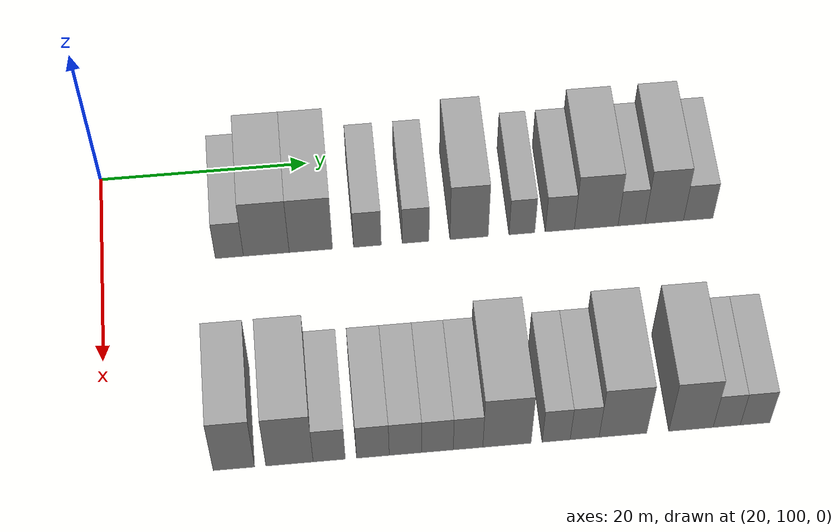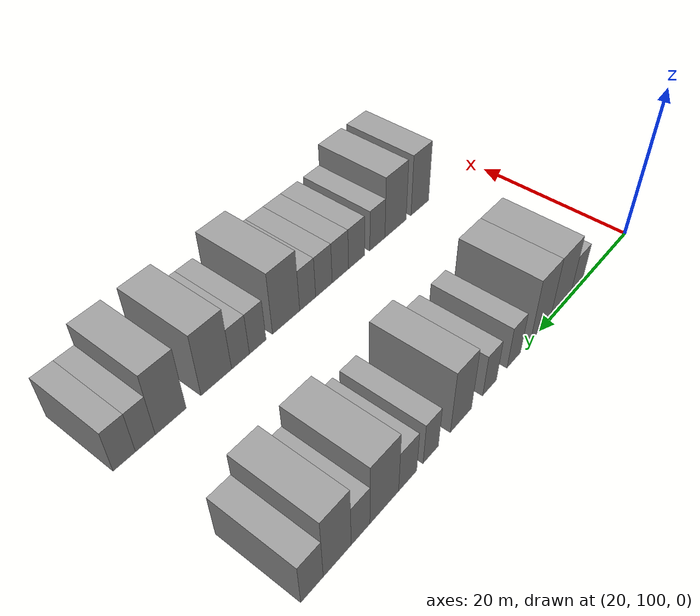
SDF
<sdf version="1.6">
 <world name="default">
  <model name="building_79">
   <static>1</static>
   <pose>25.0000 112.0614 0 0.000000 0.000000 0.000000</pose>
   <link name="link">
    <pose>0 0 3.00 0 0 0</pose>
    <collision name="collision"><geometry><box><size>10.0000 2.6617 6.0000</size></box></geometry></collision>
    <visual name="visual">
     <cast_shadows>0</cast_shadows>
     <geometry><box><size>10.0000 2.6617 6.0000</size></box></geometry>
     <material>
      <script>
       <uri>model://grey_wall/materials/scripts</uri>
       <uri>model://grey_wall/materials/textures</uri>
       <name>vrc/grey_wall</name>
      </script>
     </material>
    </visual>
   </link>
  </model>
  <model name="building_80">
   <static>1</static>
   <pose>25.0000 115.5644 0 0.000000 0.000000 0.000000</pose>
   <link name="link">
    <pose>0 0 4.50 0 0 0</pose>
    <collision name="collision"><geometry><box><size>10.0000 4.3442 9.0000</size></box></geometry></collision>
    <visual name="visual">
     <cast_shadows>0</cast_shadows>
     <geometry><box><size>10.0000 4.3442 9.0000</size></box></geometry>
     <material>
      <script>
       <uri>model://grey_wall/materials/scripts</uri>
       <uri>model://grey_wall/materials/textures</uri>
       <name>vrc/grey_wall</name>
      </script>
     </material>
    </visual>
   </link>
  </model>
  <model name="building_81">
   <static>1</static>
   <pose>25.0000 119.8007 0 0.000000 0.000000 0.000000</pose>
   <link name="link">
    <pose>0 0 4.50 0 0 0</pose>
    <collision name="collision"><geometry><box><size>10.0000 4.1285 9.0000</size></box></geometry></collision>
    <visual name="visual">
     <cast_shadows>0</cast_shadows>
     <geometry><box><size>10.0000 4.1285 9.0000</size></box></geometry>
     <material>
      <script>
       <uri>model://grey_wall/materials/scripts</uri>
       <uri>model://grey_wall/materials/textures</uri>
       <name>vrc/grey_wall</name>
      </script>
     </material>
    </visual>
   </link>
  </model>
  <model name="building_82">
   <static>1</static>
   <pose>25.0000 125.1866 0 0.000000 0.000000 0.000000</pose>
   <link name="link">
    <pose>0 0 3.00 0 0 0</pose>
    <collision name="collision"><geometry><box><size>10.0000 2.6433 6.0000</size></box></geometry></collision>
    <visual name="visual">
     <cast_shadows>0</cast_shadows>
     <geometry><box><size>10.0000 2.6433 6.0000</size></box></geometry>
     <material>
      <script>
       <uri>model://grey_wall/materials/scripts</uri>
       <uri>model://grey_wall/materials/textures</uri>
       <name>vrc/grey_wall</name>
      </script>
     </material>
    </visual>
   </link>
  </model>
  <model name="building_83">
   <static>1</static>
   <pose>25.0000 129.7910 0 0.000000 0.000000 0.000000</pose>
   <link name="link">
    <pose>0 0 3.00 0 0 0</pose>
    <collision name="collision"><geometry><box><size>10.0000 2.5655 6.0000</size></box></geometry></collision>
    <visual name="visual">
     <cast_shadows>0</cast_shadows>
     <geometry><box><size>10.0000 2.5655 6.0000</size></box></geometry>
     <material>
      <script>
       <uri>model://grey_wall/materials/scripts</uri>
       <uri>model://grey_wall/materials/textures</uri>
       <name>vrc/grey_wall</name>
      </script>
     </material>
    </visual>
   </link>
  </model>
  <model name="building_84">
   <static>1</static>
   <pose>25.0000 134.9044 0 0.000000 0.000000 0.000000</pose>
   <link name="link">
    <pose>0 0 4.50 0 0 0</pose>
    <collision name="collision"><geometry><box><size>10.0000 3.6614 9.0000</size></box></geometry></collision>
    <visual name="visual">
     <cast_shadows>0</cast_shadows>
     <geometry><box><size>10.0000 3.6614 9.0000</size></box></geometry>
     <material>
      <script>
       <uri>model://grey_wall/materials/scripts</uri>
       <uri>model://grey_wall/materials/textures</uri>
       <name>vrc/grey_wall</name>
      </script>
     </material>
    </visual>
   </link>
  </model>
  <model name="building_85">
   <static>1</static>
   <pose>25.0000 139.9746 0 0.000000 0.000000 0.000000</pose>
   <link name="link">
    <pose>0 0 3.00 0 0 0</pose>
    <collision name="collision"><geometry><box><size>10.0000 2.4791 6.0000</size></box></geometry></collision>
    <visual name="visual">
     <cast_shadows>0</cast_shadows>
     <geometry><box><size>10.0000 2.4791 6.0000</size></box></geometry>
     <material>
      <script>
       <uri>model://grey_wall/materials/scripts</uri>
       <uri>model://grey_wall/materials/textures</uri>
       <name>vrc/grey_wall</name>
      </script>
     </material>
    </visual>
   </link>
  </model>
  <model name="building_86">
   <static>1</static>
   <pose>25.0000 143.6171 0 0.000000 0.000000 0.000000</pose>
   <link name="link">
    <pose>0 0 3.00 0 0 0</pose>
    <collision name="collision"><geometry><box><size>10.0000 2.8058 6.0000</size></box></geometry></collision>
    <visual name="visual">
     <cast_shadows>0</cast_shadows>
     <geometry><box><size>10.0000 2.8058 6.0000</size></box></geometry>
     <material>
      <script>
       <uri>model://grey_wall/materials/scripts</uri>
       <uri>model://grey_wall/materials/textures</uri>
       <name>vrc/grey_wall</name>
      </script>
     </material>
    </visual>
   </link>
  </model>
  <model name="building_87">
   <static>1</static>
   <pose>25.0000 147.1233 0 0.000000 0.000000 0.000000</pose>
   <link name="link">
    <pose>0 0 4.50 0 0 0</pose>
    <collision name="collision"><geometry><box><size>10.0000 4.2065 9.0000</size></box></geometry></collision>
    <visual name="visual">
     <cast_shadows>0</cast_shadows>
     <geometry><box><size>10.0000 4.2065 9.0000</size></box></geometry>
     <material>
      <script>
       <uri>model://grey_wall/materials/scripts</uri>
       <uri>model://grey_wall/materials/textures</uri>
       <name>vrc/grey_wall</name>
      </script>
     </material>
    </visual>
   </link>
  </model>
  <model name="building_88">
   <static>1</static>
   <pose>25.0000 150.5314 0 0.000000 0.000000 0.000000</pose>
   <link name="link">
    <pose>0 0 3.00 0 0 0</pose>
    <collision name="collision"><geometry><box><size>10.0000 2.6097 6.0000</size></box></geometry></collision>
    <visual name="visual">
     <cast_shadows>0</cast_shadows>
     <geometry><box><size>10.0000 2.6097 6.0000</size></box></geometry>
     <material>
      <script>
       <uri>model://grey_wall/materials/scripts</uri>
       <uri>model://grey_wall/materials/textures</uri>
       <name>vrc/grey_wall</name>
      </script>
     </material>
    </visual>
   </link>
  </model>
  <model name="building_89">
   <static>1</static>
   <pose>25.0000 153.6996 0 0.000000 0.000000 0.000000</pose>
   <link name="link">
    <pose>0 0 4.50 0 0 0</pose>
    <collision name="collision"><geometry><box><size>10.0000 3.7268 9.0000</size></box></geometry></collision>
    <visual name="visual">
     <cast_shadows>0</cast_shadows>
     <geometry><box><size>10.0000 3.7268 9.0000</size></box></geometry>
     <material>
      <script>
       <uri>model://grey_wall/materials/scripts</uri>
       <uri>model://grey_wall/materials/textures</uri>
       <name>vrc/grey_wall</name>
      </script>
     </material>
    </visual>
   </link>
  </model>
  <model name="building_90">
   <static>1</static>
   <pose>25.0000 156.9923 0 0.000000 0.000000 0.000000</pose>
   <link name="link">
    <pose>0 0 3.00 0 0 0</pose>
    <collision name="collision"><geometry><box><size>10.0000 2.8586 6.0000</size></box></geometry></collision>
    <visual name="visual">
     <cast_shadows>0</cast_shadows>
     <geometry><box><size>10.0000 2.8586 6.0000</size></box></geometry>
     <material>
      <script>
       <uri>model://grey_wall/materials/scripts</uri>
       <uri>model://grey_wall/materials/textures</uri>
       <name>vrc/grey_wall</name>
      </script>
     </material>
    </visual>
   </link>
  </model>
  <model name="building_184">
   <static>1</static>
   <pose>47.0000 111.4983 0 0.000000 0.000000 0.000000</pose>
   <link name="link">
    <pose>0 0 4.50 0 0 0</pose>
    <collision name="collision"><geometry><box><size>10.0000 3.6897 9.0000</size></box></geometry></collision>
    <visual name="visual">
     <cast_shadows>0</cast_shadows>
     <geometry><box><size>10.0000 3.6897 9.0000</size></box></geometry>
     <material>
      <script>
       <uri>model://grey_wall/materials/scripts</uri>
       <uri>model://grey_wall/materials/textures</uri>
       <name>vrc/grey_wall</name>
      </script>
     </material>
    </visual>
   </link>
  </model>
  <model name="building_185">
   <static>1</static>
   <pose>47.0000 116.4499 0 0.000000 0.000000 0.000000</pose>
   <link name="link">
    <pose>0 0 4.50 0 0 0</pose>
    <collision name="collision"><geometry><box><size>10.0000 4.2136 9.0000</size></box></geometry></collision>
    <visual name="visual">
     <cast_shadows>0</cast_shadows>
     <geometry><box><size>10.0000 4.2136 9.0000</size></box></geometry>
     <material>
      <script>
       <uri>model://grey_wall/materials/scripts</uri>
       <uri>model://grey_wall/materials/textures</uri>
       <name>vrc/grey_wall</name>
      </script>
     </material>
    </visual>
   </link>
  </model>
  <model name="building_186">
   <static>1</static>
   <pose>47.0000 120.0003 0 0.000000 0.000000 0.000000</pose>
   <link name="link">
    <pose>0 0 3.00 0 0 0</pose>
    <collision name="collision"><geometry><box><size>10.0000 2.8871 6.0000</size></box></geometry></collision>
    <visual name="visual">
     <cast_shadows>0</cast_shadows>
     <geometry><box><size>10.0000 2.8871 6.0000</size></box></geometry>
     <material>
      <script>
       <uri>model://grey_wall/materials/scripts</uri>
       <uri>model://grey_wall/materials/textures</uri>
       <name>vrc/grey_wall</name>
      </script>
     </material>
    </visual>
   </link>
  </model>
  <model name="building_187">
   <static>1</static>
   <pose>47.0000 123.9066 0 0.000000 0.000000 0.000000</pose>
   <link name="link">
    <pose>0 0 3.00 0 0 0</pose>
    <collision name="collision"><geometry><box><size>10.0000 2.9255 6.0000</size></box></geometry></collision>
    <visual name="visual">
     <cast_shadows>0</cast_shadows>
     <geometry><box><size>10.0000 2.9255 6.0000</size></box></geometry>
     <material>
      <script>
       <uri>model://grey_wall/materials/scripts</uri>
       <uri>model://grey_wall/materials/textures</uri>
       <name>vrc/grey_wall</name>
      </script>
     </material>
    </visual>
   </link>
  </model>
  <model name="building_188">
   <static>1</static>
   <pose>47.0000 126.8289 0 0.000000 0.000000 0.000000</pose>
   <link name="link">
    <pose>0 0 3.00 0 0 0</pose>
    <collision name="collision"><geometry><box><size>10.0000 2.9191 6.0000</size></box></geometry></collision>
    <visual name="visual">
     <cast_shadows>0</cast_shadows>
     <geometry><box><size>10.0000 2.9191 6.0000</size></box></geometry>
     <material>
      <script>
       <uri>model://grey_wall/materials/scripts</uri>
       <uri>model://grey_wall/materials/textures</uri>
       <name>vrc/grey_wall</name>
      </script>
     </material>
    </visual>
   </link>
  </model>
  <model name="building_189">
   <static>1</static>
   <pose>47.0000 129.7063 0 0.000000 0.000000 0.000000</pose>
   <link name="link">
    <pose>0 0 3.00 0 0 0</pose>
    <collision name="collision"><geometry><box><size>10.0000 2.8358 6.0000</size></box></geometry></collision>
    <visual name="visual">
     <cast_shadows>0</cast_shadows>
     <geometry><box><size>10.0000 2.8358 6.0000</size></box></geometry>
     <material>
      <script>
       <uri>model://grey_wall/materials/scripts</uri>
       <uri>model://grey_wall/materials/textures</uri>
       <name>vrc/grey_wall</name>
      </script>
     </material>
    </visual>
   </link>
  </model>
  <model name="building_190">
   <static>1</static>
   <pose>47.0000 132.4547 0 0.000000 0.000000 0.000000</pose>
   <link name="link">
    <pose>0 0 3.00 0 0 0</pose>
    <collision name="collision"><geometry><box><size>10.0000 2.6610 6.0000</size></box></geometry></collision>
    <visual name="visual">
     <cast_shadows>0</cast_shadows>
     <geometry><box><size>10.0000 2.6610 6.0000</size></box></geometry>
     <material>
      <script>
       <uri>model://grey_wall/materials/scripts</uri>
       <uri>model://grey_wall/materials/textures</uri>
       <name>vrc/grey_wall</name>
      </script>
     </material>
    </visual>
   </link>
  </model>
  <model name="building_191">
   <static>1</static>
   <pose>47.0000 135.9613 0 0.000000 0.000000 0.000000</pose>
   <link name="link">
    <pose>0 0 4.50 0 0 0</pose>
    <collision name="collision"><geometry><box><size>10.0000 4.3522 9.0000</size></box></geometry></collision>
    <visual name="visual">
     <cast_shadows>0</cast_shadows>
     <geometry><box><size>10.0000 4.3522 9.0000</size></box></geometry>
     <material>
      <script>
       <uri>model://grey_wall/materials/scripts</uri>
       <uri>model://grey_wall/materials/textures</uri>
       <name>vrc/grey_wall</name>
      </script>
     </material>
    </visual>
   </link>
  </model>
  <model name="building_192">
   <static>1</static>
   <pose>47.0000 140.4027 0 0.000000 0.000000 0.000000</pose>
   <link name="link">
    <pose>0 0 3.00 0 0 0</pose>
    <collision name="collision"><geometry><box><size>10.0000 2.5306 6.0000</size></box></geometry></collision>
    <visual name="visual">
     <cast_shadows>0</cast_shadows>
     <geometry><box><size>10.0000 2.5306 6.0000</size></box></geometry>
     <material>
      <script>
       <uri>model://grey_wall/materials/scripts</uri>
       <uri>model://grey_wall/materials/textures</uri>
       <name>vrc/grey_wall</name>
      </script>
     </material>
    </visual>
   </link>
  </model>
  <model name="building_193">
   <static>1</static>
   <pose>47.0000 142.9789 0 0.000000 0.000000 0.000000</pose>
   <link name="link">
    <pose>0 0 3.00 0 0 0</pose>
    <collision name="collision"><geometry><box><size>10.0000 2.6219 6.0000</size></box></geometry></collision>
    <visual name="visual">
     <cast_shadows>0</cast_shadows>
     <geometry><box><size>10.0000 2.6219 6.0000</size></box></geometry>
     <material>
      <script>
       <uri>model://grey_wall/materials/scripts</uri>
       <uri>model://grey_wall/materials/textures</uri>
       <name>vrc/grey_wall</name>
      </script>
     </material>
    </visual>
   </link>
  </model>
  <model name="building_194">
   <static>1</static>
   <pose>47.0000 146.4552 0 0.000000 0.000000 0.000000</pose>
   <link name="link">
    <pose>0 0 4.50 0 0 0</pose>
    <collision name="collision"><geometry><box><size>10.0000 4.3307 9.0000</size></box></geometry></collision>
    <visual name="visual">
     <cast_shadows>0</cast_shadows>
     <geometry><box><size>10.0000 4.3307 9.0000</size></box></geometry>
     <material>
      <script>
       <uri>model://grey_wall/materials/scripts</uri>
       <uri>model://grey_wall/materials/textures</uri>
       <name>vrc/grey_wall</name>
      </script>
     </material>
    </visual>
   </link>
  </model>
  <model name="building_195">
   <static>1</static>
   <pose>47.0000 152.6390 0 0.000000 0.000000 0.000000</pose>
   <link name="link">
    <pose>0 0 4.50 0 0 0</pose>
    <collision name="collision"><geometry><box><size>10.0000 4.0368 9.0000</size></box></geometry></collision>
    <visual name="visual">
     <cast_shadows>0</cast_shadows>
     <geometry><box><size>10.0000 4.0368 9.0000</size></box></geometry>
     <material>
      <script>
       <uri>model://grey_wall/materials/scripts</uri>
       <uri>model://grey_wall/materials/textures</uri>
       <name>vrc/grey_wall</name>
      </script>
     </material>
    </visual>
   </link>
  </model>
  <model name="building_196">
   <static>1</static>
   <pose>47.0000 155.8919 0 0.000000 0.000000 0.000000</pose>
   <link name="link">
    <pose>0 0 3.00 0 0 0</pose>
    <collision name="collision"><geometry><box><size>10.0000 2.4691 6.0000</size></box></geometry></collision>
    <visual name="visual">
     <cast_shadows>0</cast_shadows>
     <geometry><box><size>10.0000 2.4691 6.0000</size></box></geometry>
     <material>
      <script>
       <uri>model://grey_wall/materials/scripts</uri>
       <uri>model://grey_wall/materials/textures</uri>
       <name>vrc/grey_wall</name>
      </script>
     </material>
    </visual>
   </link>
  </model>
  <model name="building_197">
   <static>1</static>
   <pose>47.0000 158.4852 0 0.000000 0.000000 0.000000</pose>
   <link name="link">
    <pose>0 0 3.00 0 0 0</pose>
    <collision name="collision"><geometry><box><size>10.0000 2.7174 6.0000</size></box></geometry></collision>
    <visual name="visual">
     <cast_shadows>0</cast_shadows>
     <geometry><box><size>10.0000 2.7174 6.0000</size></box></geometry>
     <material>
      <script>
       <uri>model://grey_wall/materials/scripts</uri>
       <uri>model://grey_wall/materials/textures</uri>
       <name>vrc/grey_wall</name>
      </script>
     </material>
    </visual>
   </link>
  </model>
 </world>
</sdf>
